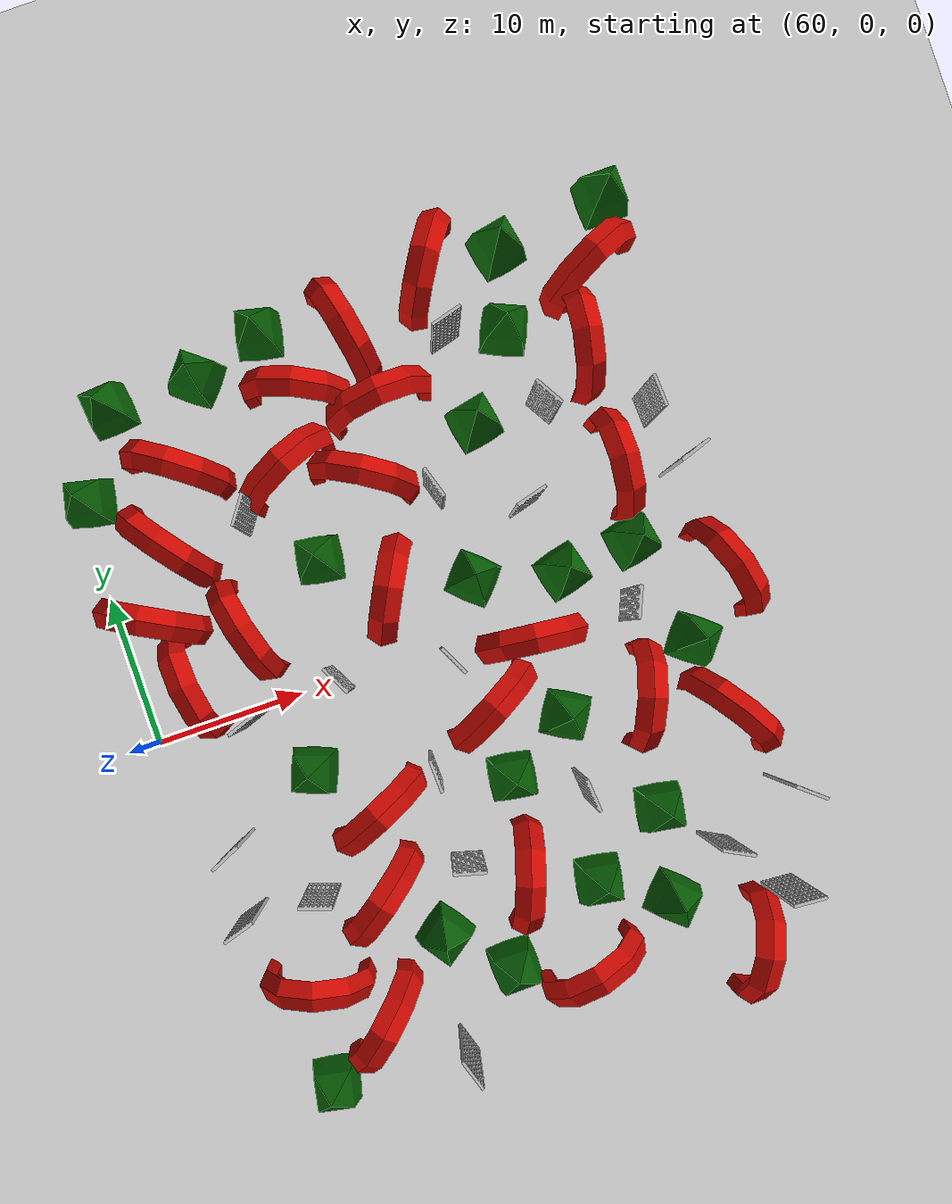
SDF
<sdf version="1.4">
 <world name="default">
  <model name="ground_plane">
   <static>1</static>
   <link name="link">
    <collision name="collision">
     <geometry><plane><normal>0 0 1</normal><size>1000 1000</size></plane></geometry>
     <surface>
      <contact><collide_bitmask>65535</collide_bitmask></contact>
      <friction><ode><mu>100</mu><mu2>50</mu2></ode></friction>
     </surface>
    </collision>
    <visual name="visual">
     <cast_shadows>0</cast_shadows>
     <geometry><plane><normal>0 0 1</normal><size>1000 1000</size></plane></geometry>
    </visual>
   </link>
  </model>
  <include><uri>model://sun</uri></include>
  <include>
   <name>mixedSimple Pyramid21</name>
   <uri>model://Simple Pyramid</uri>
   <pose>63.830769538879395 -24.995406128000468 0 0 0 0.592667753258</pose>
   <static>true</static>
  </include>
  <include>
   <name>mixedfence_high22</name>
   <uri>model://fence_high</uri>
   <pose>61.35959243774414 -12.653701782226562 0 0 0 5.01105894292</pose>
   <static>true</static>
  </include>
  <include>
   <name>mixedfence_high23</name>
   <uri>model://fence_high</uri>
   <pose>64.09990692138672 -7.574151992797852 0 0 0 1.99777824769</pose>
   <static>true</static>
  </include>
  <include>
   <name>mixedSimple U24</name>
   <uri>model://Simple U</uri>
   <pose>63.75197696685791 2.7357521057128906 0 0 0 1.68158423014</pose>
   <static>true</static>
  </include>
  <include>
   <name>mixedSimple U25</name>
   <uri>model://Simple U</uri>
   <pose>62.50751209259033 7.583568572998047 0 0 0 2.63740933393</pose>
   <static>true</static>
  </include>
  <include>
   <name>mixedSimple Pyramid26</name>
   <uri>model://Simple Pyramid</uri>
   <pose>60.93061923980713 16.470523834228516 0 0 0 0.55753653735</pose>
   <static>true</static>
  </include>
  <include>
   <name>mixedSimple Pyramid27</name>
   <uri>model://Simple Pyramid</uri>
   <pose>64.07785606384277 21.83435821533203 0 0 0 5.58412561553</pose>
   <static>true</static>
  </include>
  <include>
   <name>mixedSimple U28</name>
   <uri>model://Simple U</uri>
   <pose>65.13227939605713 -17.96005153656006 0 0 0 5.96854650739</pose>
   <static>true</static>
  </include>
  <include>
   <name>mixedfence_high29</name>
   <uri>model://fence_high</uri>
   <pose>66.33373832702637 -12.098814964294434 0 0 0 4.37645357223</pose>
   <static>true</static>
  </include>
  <include>
   <name>mixedSimple U30</name>
   <uri>model://Simple U</uri>
   <pose>65.07512950897217 11.879772186279297 0 0 0 5.35251125751</pose>
   <static>true</static>
  </include>
  <include>
   <name>mixedSimple U31</name>
   <uri>model://Simple U</uri>
   <pose>67.27700424194336 16.374412536621094 0 0 0 2.53158630546</pose>
   <static>true</static>
  </include>
  <include>
   <name>mixedSimple U32</name>
   <uri>model://Simple U</uri>
   <pose>68.4785327911377 -21.681960821151733 0 0 0 3.8795004397</pose>
   <static>true</static>
  </include>
  <include>
   <name>mixedSimple U33</name>
   <uri>model://Simple U</uri>
   <pose>70.9375171661377 -14.06229019165039 0 0 0 0.642835841465</pose>
   <static>true</static>
  </include>
  <include>
   <name>mixedSimple Pyramid34</name>
   <uri>model://Simple Pyramid</uri>
   <pose>69.10396957397461 -5.1225433349609375 0 0 0 0.423655693853</pose>
   <static>true</static>
  </include>
  <include>
   <name>mixedfence_high35</name>
   <uri>model://fence_high</uri>
   <pose>67.7219066619873 -0.3121452331542969 0 0 0 1.91552045331</pose>
   <static>true</static>
  </include>
  <include>
   <name>mixedSimple U36</name>
   <uri>model://Simple U</uri>
   <pose>68.19306564331055 5.043729782104492 0 0 0 1.81339494528</pose>
   <static>true</static>
  </include>
  <include>
   <name>mixedfence_high37</name>
   <uri>model://fence_high</uri>
   <pose>70.01251602172852 11.05987548828125 0 0 0 5.66649818069</pose>
   <static>true</static>
  </include>
  <include>
   <name>mixedSimple Pyramid38</name>
   <uri>model://Simple Pyramid</uri>
   <pose>70.2302474975586 21.911727905273438 0 0 0 3.25284190727</pose>
   <static>true</static>
  </include>
  <include>
   <name>mixedfence_high39</name>
   <uri>model://fence_high</uri>
   <pose>72.80035209655762 -24.206224620342255 0 0 0 3.45725385829</pose>
   <static>true</static>
  </include>
  <include>
   <name>mixedSimple Pyramid40</name>
   <uri>model://Simple Pyramid</uri>
   <pose>73.83099937438965 -18.146135807037354 0 0 0 1.40859954355</pose>
   <static>true</static>
  </include>
  <include>
   <name>mixedSimple U41</name>
   <uri>model://Simple U</uri>
   <pose>72.51450157165527 -8.785642623901367 0 0 0 3.56349734888</pose>
   <static>true</static>
  </include>
  <include>
   <name>mixedfence_high42</name>
   <uri>model://fence_high</uri>
   <pose>72.52863121032715 1.0826396942138672 0 0 0 3.62795965274</pose>
   <static>true</static>
  </include>
  <include>
   <name>mixedSimple Pyramid43</name>
   <uri>model://Simple Pyramid</uri>
   <pose>73.9872932434082 8.018299102783203 0 0 0 5.33362686958</pose>
   <static>true</static>
  </include>
  <include>
   <name>mixedSimple U44</name>
   <uri>model://Simple U</uri>
   <pose>74.02641487121582 14.049633026123047 0 0 0 3.57297704072</pose>
   <static>true</static>
  </include>
  <include>
   <name>mixedSimple Pyramid45</name>
   <uri>model://Simple Pyramid</uri>
   <pose>77.49564170837402 -21.555009841918945 0 0 0 5.52503045092</pose>
   <static>true</static>
  </include>
  <include>
   <name>mixedfence_high46</name>
   <uri>model://fence_high</uri>
   <pose>75.87326431274414 -13.23256778717041 0 0 0 4.44701175462</pose>
   <static>true</static>
  </include>
  <include>
   <name>mixedfence_high47</name>
   <uri>model://fence_high</uri>
   <pose>76.88156318664551 -6.340486526489258 0 0 0 3.17605737206</pose>
   <static>true</static>
  </include>
  <include>
   <name>mixedSimple U48</name>
   <uri>model://Simple U</uri>
   <pose>77.78689956665039 4.487825393676758 0 0 0 4.22734303068</pose>
   <static>true</static>
  </include>
  <include>
   <name>mixedSimple U49</name>
   <uri>model://Simple U</uri>
   <pose>76.27794075012207 18.519607543945312 0 0 0 2.72706153751</pose>
   <static>true</static>
  </include>
  <include>
   <name>mixedSimple Pyramid50</name>
   <uri>model://Simple Pyramid</uri>
   <pose>75.01993751525879 23.363929748535156 0 0 0 5.27668483632</pose>
   <static>true</static>
  </include>
  <include>
   <name>mixedSimple U51</name>
   <uri>model://Simple U</uri>
   <pose>80.10652923583984 -15.902678489685059 0 0 0 4.3681368294</pose>
   <static>true</static>
  </include>
  <include>
   <name>mixedSimple Pyramid52</name>
   <uri>model://Simple Pyramid</uri>
   <pose>81.40832138061523 -9.754717826843262 0 0 0 2.21441187064</pose>
   <static>true</static>
  </include>
  <include>
   <name>mixedSimple U53</name>
   <uri>model://Simple U</uri>
   <pose>81.6286563873291 -4.754570007324219 0 0 0 3.65045000362</pose>
   <static>true</static>
  </include>
  <include>
   <name>mixedfence_high54</name>
   <uri>model://fence_high</uri>
   <pose>79.77161407470703 -0.10683822631835938 0 0 0 3.5948500719</pose>
   <static>true</static>
  </include>
  <include>
   <name>mixedSimple U55</name>
   <uri>model://Simple U</uri>
   <pose>78.56412887573242 11.937957763671875 0 0 0 2.60277284044</pose>
   <static>true</static>
  </include>
  <include>
   <name>mixedSimple U56</name>
   <uri>model://Simple U</uri>
   <pose>81.09690284729004 16.25479507446289 0 0 0 0.0858591823858</pose>
   <static>true</static>
  </include>
  <include>
   <name>mixedSimple U57</name>
   <uri>model://Simple U</uri>
   <pose>80.39358711242676 21.367671966552734 0 0 0 1.78203890621</pose>
   <static>true</static>
  </include>
  <include>
   <name>mixedSimple U58</name>
   <uri>model://Simple U</uri>
   <pose>82.34109497070312 -22.80864715576172 0 0 0 3.36807477973</pose>
   <static>true</static>
  </include>
  <include>
   <name>mixedSimple Pyramid59</name>
   <uri>model://Simple Pyramid</uri>
   <pose>84.63446807861328 -18.03523588180542 0 0 0 3.76484950277</pose>
   <static>true</static>
  </include>
  <include>
   <name>mixedSimple Pyramid60</name>
   <uri>model://Simple Pyramid</uri>
   <pose>83.22554779052734 3.5153656005859375 0 0 0 4.76562649469</pose>
   <static>true</static>
  </include>
  <include>
   <name>mixedfence_high61</name>
   <uri>model://fence_high</uri>
   <pose>82.74993896484375 8.497718811035156 0 0 0 0.304380445152</pose>
   <static>true</static>
  </include>
  <include>
   <name>mixedSimple Pyramid62</name>
   <uri>model://Simple Pyramid</uri>
   <pose>88.81648635864258 -20.784916877746582 0 0 0 4.75291886005</pose>
   <static>true</static>
  </include>
  <include>
   <name>mixedfence_high63</name>
   <uri>model://fence_high</uri>
   <pose>85.47747421264648 -12.668825149536133 0 0 0 0.0815454865203</pose>
   <static>true</static>
  </include>
  <include>
   <name>mixedSimple Pyramid64</name>
   <uri>model://Simple Pyramid</uri>
   <pose>86.07384872436523 -7.054634094238281 0 0 0 3.39514089079</pose>
   <static>true</static>
  </include>
  <include>
   <name>mixedSimple U65</name>
   <uri>model://Simple U</uri>
   <pose>85.43091583251953 -1.4999027252197266 0 0 0 6.18126072649</pose>
   <static>true</static>
  </include>
  <include>
   <name>mixedSimple Pyramid66</name>
   <uri>model://Simple Pyramid</uri>
   <pose>86.66280746459961 13.213172912597656 0 0 0 0.978831441843</pose>
   <static>true</static>
  </include>
  <include>
   <name>mixedfence_high67</name>
   <uri>model://fence_high</uri>
   <pose>85.48063659667969 18.669940948486328 0 0 0 4.97497590258</pose>
   <static>true</static>
  </include>
  <include>
   <name>mixedSimple U68</name>
   <uri>model://Simple U</uri>
   <pose>86.7516975402832 23.510852813720703 0 0 0 4.14422435996</pose>
   <static>true</static>
  </include>
  <include>
   <name>mixedSimple Pyramid69</name>
   <uri>model://Simple Pyramid</uri>
   <pose>89.98015594482422 -14.854204177856445 0 0 0 3.76683766205</pose>
   <static>true</static>
  </include>
  <include>
   <name>mixedSimple U70</name>
   <uri>model://Simple U</uri>
   <pose>91.07178115844727 -7.320529937744141 0 0 0 1.20416304263</pose>
   <static>true</static>
  </include>
  <include>
   <name>mixedfence_high71</name>
   <uri>model://fence_high</uri>
   <pose>91.47990417480469 -2.333372116088867 0 0 0 5.88245570133</pose>
   <static>true</static>
  </include>
  <include>
   <name>mixedSimple Pyramid72</name>
   <uri>model://Simple Pyramid</uri>
   <pose>88.99674987792969 2.012197494506836 0 0 0 1.0428776655</pose>
   <static>true</static>
  </include>
  <include>
   <name>mixedfence_high73</name>
   <uri>model://fence_high</uri>
   <pose>88.90311431884766 7.016323089599609 0 0 0 1.83705422973</pose>
   <static>true</static>
  </include>
  <include>
   <name>mixedfence_high74</name>
   <uri>model://fence_high</uri>
   <pose>91.37065124511719 11.514274597167969 0 0 0 0.532581600434</pose>
   <static>true</static>
  </include>
  <include>
   <name>mixedSimple Pyramid75</name>
   <uri>model://Simple Pyramid</uri>
   <pose>90.48176574707031 18.337738037109375 0 0 0 0.372247971806</pose>
   <static>true</static>
  </include>
  <include>
   <name>mixedSimple Pyramid76</name>
   <uri>model://Simple Pyramid</uri>
   <pose>91.75659942626953 23.54214859008789 0 0 0 2.55842607072</pose>
   <static>true</static>
  </include>
  <include>
   <name>mixedSimple U77</name>
   <uri>model://Simple U</uri>
   <pose>92.68756103515625 -24.927103526890278 0 0 0 4.25878171416</pose>
   <static>true</static>
  </include>
  <include>
   <name>mixedfence_high78</name>
   <uri>model://fence_high</uri>
   <pose>93.58119201660156 -18.33020305633545 0 0 0 1.08411079706</pose>
   <static>true</static>
  </include>
  <include>
   <name>mixedSimple Pyramid79</name>
   <uri>model://Simple Pyramid</uri>
   <pose>95.69114303588867 -5.038084030151367 0 0 0 3.26370356503</pose>
   <static>true</static>
  </include>
  <include>
   <name>mixedSimple Pyramid80</name>
   <uri>model://Simple Pyramid</uri>
   <pose>93.98319625854492 2.4427528381347656 0 0 0 4.1315509258</pose>
   <static>true</static>
  </include>
  <include>
   <name>mixedSimple U81</name>
   <uri>model://Simple U</uri>
   <pose>94.27640914916992 7.439155578613281 0 0 0 1.52205826766</pose>
   <static>true</static>
  </include>
  <include>
   <name>mixedSimple U82</name>
   <uri>model://Simple U</uri>
   <pose>94.68021774291992 15.613216400146484 0 0 0 1.41538574251</pose>
   <static>true</static>
  </include>
  <include>
   <name>mixedfence_high83</name>
   <uri>model://fence_high</uri>
   <pose>96.83827590942383 -22.130390644073486 0 0 0 1.50244171614</pose>
   <static>true</static>
  </include>
  <include>
   <name>mixedfence_high84</name>
   <uri>model://fence_high</uri>
   <pose>97.31472778320312 -14.996927261352539 0 0 0 4.02391291706</pose>
   <static>true</static>
  </include>
  <include>
   <name>mixedSimple U85</name>
   <uri>model://Simple U</uri>
   <pose>96.25883483886719 -10.104575157165527 0 0 0 2.14574486497</pose>
   <static>true</static>
  </include>
  <include>
   <name>mixedSimple U86</name>
   <uri>model://Simple U</uri>
   <pose>98.90373992919922 -1.2002124786376953 0 0 0 5.00058629504</pose>
   <static>true</static>
  </include>
  <include>
   <name>mixedfence_high87</name>
   <uri>model://fence_high</uri>
   <pose>99.18558502197266 6.464466094970703 0 0 0 1.90351388877</pose>
   <static>true</static>
  </include>
  <include>
   <name>mixedfence_high88</name>
   <uri>model://fence_high</uri>
   <pose>97.35671997070312 11.383991241455078 0 0 0 3.19220758187</pose>
   <static>true</static>
  </include>
  <include>
   <name>mixedSimple U89</name>
   <uri>model://Simple U</uri>
   <pose>96.79976654052734 20.147262573242188 0 0 0 0.44781629614</pose>
   <static>true</static>
  </include>
  <include>
   <name>mixedSimple Pyramid90</name>
   <uri>model://Simple Pyramid</uri>
   <pose>99.33735656738281 24.46126937866211 0 0 0 5.51532405021</pose>
   <static>true</static>
  </include>
 </world>
</sdf>
